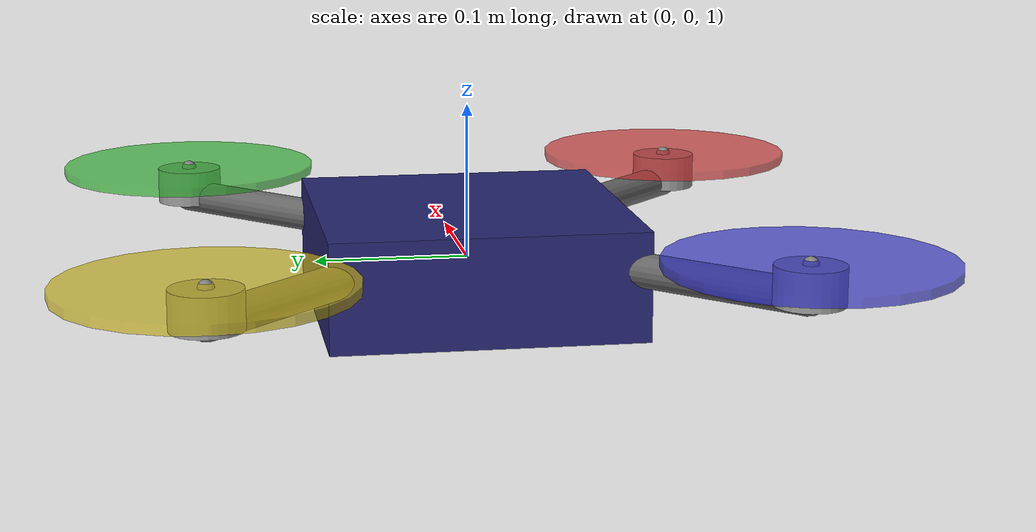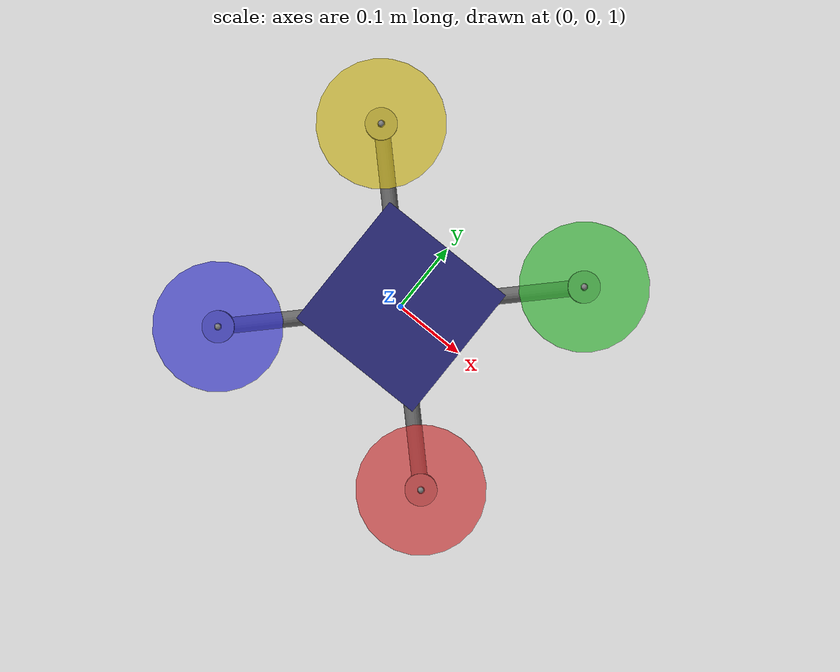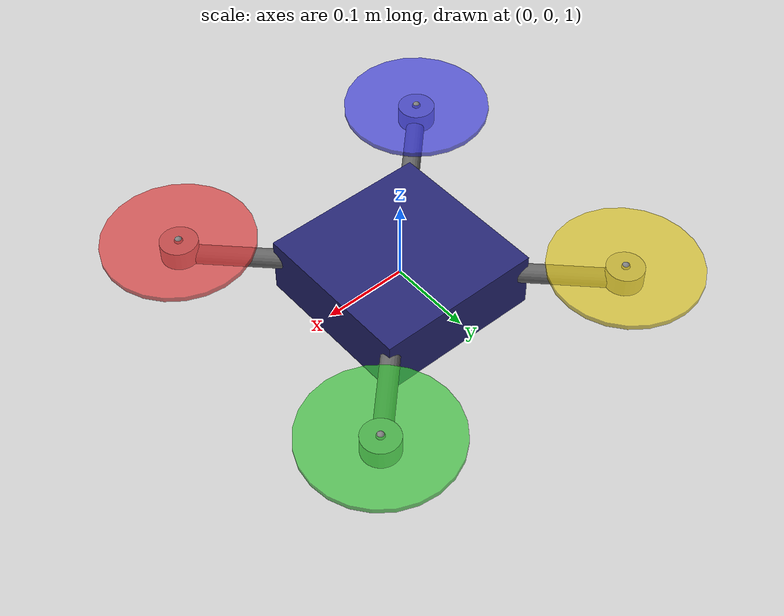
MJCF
<mujoco model="sar_drone">
  <compiler angle="radian" autolimits="true"/>

  <option timestep="0.005" gravity="0 0 -9.81" integrator="RK4"/>

  <default>
    <motor ctrlrange="0 10" ctrllimited="true"/>
    <geom contype="0" conaffinity="0"/>
  </default>

  <worldbody>
    <body name="drone" pos="0 0 1">
      <freejoint name="root"/>
      <!--
        Inertia: approximate values for a 1.7 kg carbon-fibre frame.
        Ixx, Iyy slightly asymmetric; Izz larger due to arm spread.
      -->
      <inertial mass="1.7" pos="0 0 0" diaginertia="0.0082 0.0094 0.0155"/>

      <!-- Central body -->
      <geom name="body" type="box" size="0.10 0.10 0.035" rgba="0.15 0.15 0.45 1"/>

      <!-- Arms (visual only) -->
      <geom name="arm1" type="capsule"
            fromto="-0.175 -0.175 0.01  0.175  0.175 0.01"
            size="0.011" rgba="0.4 0.4 0.4 1"/>
      <geom name="arm2" type="capsule"
            fromto="-0.175  0.175 0.01  0.175 -0.175 0.01"
            size="0.011" rgba="0.4 0.4 0.4 1"/>

      <!-- Motor mounts -->
      <geom name="mount_fr" type="cylinder" pos=" 0.175 -0.175 0.018" size="0.022 0.012" rgba="0.6 0.6 0.6 1"/>
      <geom name="mount_fl" type="cylinder" pos=" 0.175  0.175 0.018" size="0.022 0.012" rgba="0.6 0.6 0.6 1"/>
      <geom name="mount_rr" type="cylinder" pos="-0.175 -0.175 0.018" size="0.022 0.012" rgba="0.6 0.6 0.6 1"/>
      <geom name="mount_rl" type="cylinder" pos="-0.175  0.175 0.018" size="0.022 0.012" rgba="0.6 0.6 0.6 1"/>

      <!-- Propeller discs (visual) -->
      <geom name="prop_fr" type="cylinder" pos=" 0.175 -0.175 0.030" size="0.088 0.003" rgba="0.85 0.20 0.20 0.7"/>
      <geom name="prop_fl" type="cylinder" pos=" 0.175  0.175 0.030" size="0.088 0.003" rgba="0.20 0.75 0.20 0.7"/>
      <geom name="prop_rr" type="cylinder" pos="-0.175 -0.175 0.030" size="0.088 0.003" rgba="0.20 0.20 0.85 0.7"/>
      <geom name="prop_rl" type="cylinder" pos="-0.175  0.175 0.030" size="0.088 0.003" rgba="0.85 0.75 0.10 0.7"/>

      <!-- Rotor thrust sites — gear applies force in site's +Z direction. -->
      <!-- Reactive yaw torque via gear[5]: CW=-k, CCW=+k, k=0.016 Nm/N -->
      <site name="rotor_fr" pos=" 0.175 -0.175 0.030"/>
      <site name="rotor_fl" pos=" 0.175  0.175 0.030"/>
      <site name="rotor_rr" pos="-0.175 -0.175 0.030"/>
      <site name="rotor_rl" pos="-0.175  0.175 0.030"/>
    </body>
  </worldbody>

  <actuator>
    <!-- FR: CW  → gear[5] = -0.016 -->
    <motor name="motor_fr" site="rotor_fr" gear="0 0 1 0 0 -0.016"/>
    <!-- FL: CCW → gear[5] = +0.016 -->
    <motor name="motor_fl" site="rotor_fl" gear="0 0 1 0 0  0.016"/>
    <!-- RR: CCW → gear[5] = +0.016 -->
    <motor name="motor_rr" site="rotor_rr" gear="0 0 1 0 0  0.016"/>
    <!-- RL: CW  → gear[5] = -0.016 -->
    <motor name="motor_rl" site="rotor_rl" gear="0 0 1 0 0 -0.016"/>
  </actuator>
</mujoco>
